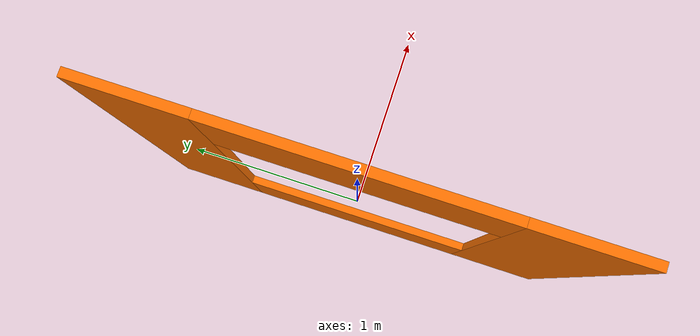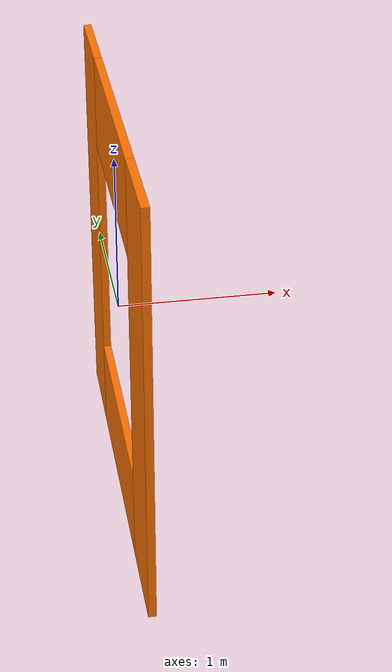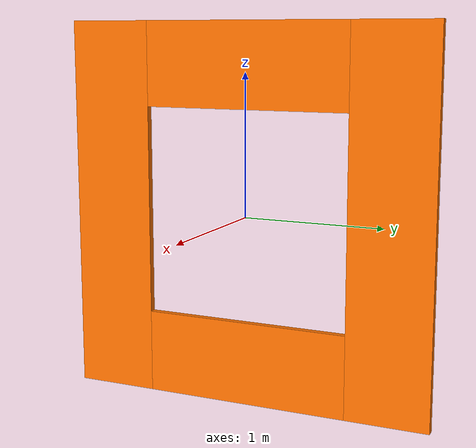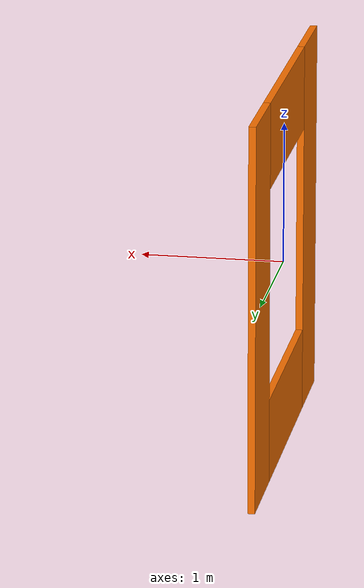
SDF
<?xml version="1.0"?>
<!-- 자동 생성: adr_sim/scripts/gen_world.py (입력: 맵 yaml 의 gate:). 직접 수정하지 말 것.
     정사각 레이싱 게이트. 내부 1.5 m, 외부 2.7 m (프레임 폭 0.6 m), 두께 0.05 m.
     원점 = 개구부 중심, +x = 통과 방향(법선). static 이라 공중에 고정된다(다리 없음). -->
<sdf version="1.9">
  <model name="adr_gate_inverted_loop">
    <static>true</static>
    <link name="left">
      <pose>0 1.05 0 0 0 0</pose>
      <visual name="left_visual">
        <geometry><box><size>0.05 0.6 2.7</size></box></geometry>
        <material>
          <ambient>1.0 0.45 0.0 1</ambient>
          <diffuse>1.0 0.45 0.0 1</diffuse>
          <specular>0.2 0.2 0.2 1</specular>
        </material>
      </visual>
      <collision name="left_collision">
        <geometry><box><size>0.05 0.6 2.7</size></box></geometry>
      </collision>
    </link>
    <link name="right">
      <pose>0 -1.05 0 0 0 0</pose>
      <visual name="right_visual">
        <geometry><box><size>0.05 0.6 2.7</size></box></geometry>
        <material>
          <ambient>1.0 0.45 0.0 1</ambient>
          <diffuse>1.0 0.45 0.0 1</diffuse>
          <specular>0.2 0.2 0.2 1</specular>
        </material>
      </visual>
      <collision name="right_collision">
        <geometry><box><size>0.05 0.6 2.7</size></box></geometry>
      </collision>
    </link>
    <link name="top">
      <pose>0 0 1.05 0 0 0</pose>
      <visual name="top_visual">
        <geometry><box><size>0.05 1.5 0.6</size></box></geometry>
        <material>
          <ambient>1.0 0.45 0.0 1</ambient>
          <diffuse>1.0 0.45 0.0 1</diffuse>
          <specular>0.2 0.2 0.2 1</specular>
        </material>
      </visual>
      <collision name="top_collision">
        <geometry><box><size>0.05 1.5 0.6</size></box></geometry>
      </collision>
    </link>
    <link name="bottom">
      <pose>0 0 -1.05 0 0 0</pose>
      <visual name="bottom_visual">
        <geometry><box><size>0.05 1.5 0.6</size></box></geometry>
        <material>
          <ambient>1.0 0.45 0.0 1</ambient>
          <diffuse>1.0 0.45 0.0 1</diffuse>
          <specular>0.2 0.2 0.2 1</specular>
        </material>
      </visual>
      <collision name="bottom_collision">
        <geometry><box><size>0.05 1.5 0.6</size></box></geometry>
      </collision>
    </link>
  </model>
</sdf>
